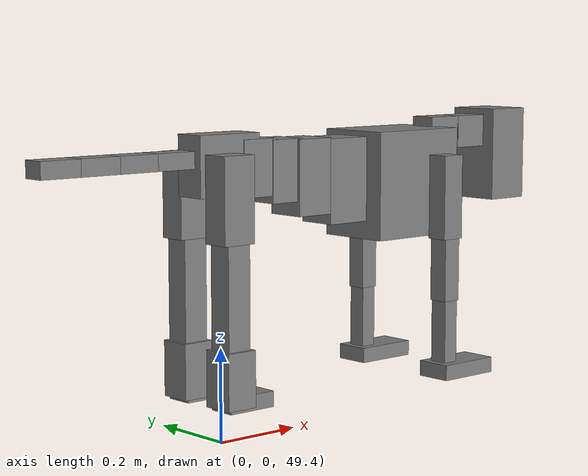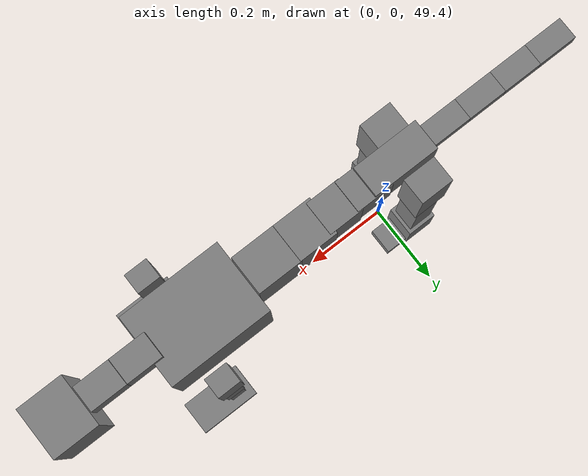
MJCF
<mujoco model="dog">

    <default>
        <joint armature="0.02" stiffness="1" damping="0.2" limited="true"/>
        <geom condim="3" friction="1 0.05 0.05" margin="0.01"/>
        <motor ctrllimited="true" ctrlrange="-1.0 1.0" forcelimited="true" gear="50"/>
    </default>

    <compiler inertiafromgeom="true" angle="radian"/>

    <option timestep="0.016" iterations="50" tolerance="1e-10" solver="Newton" jacobian="dense" cone="pyramidal"/>

    <size nconmax="20000" njmax="60000" nstack="5000000"/>
    <visual>
        <map force="0.1" zfar="30"/>
        <rgba haze="0.15 0.25 0.35 1"/>
        <quality shadowsize="2048"/>
        <global offwidth="800" offheight="800"/>
    </visual>

    <asset>
        <texture type="skybox" builtin="gradient" rgb1="0.3 0.5 0.7" rgb2="0 0 0" width="512" height="512"/>
        <texture name="texplane" type="2d" builtin="checker" rgb1=".2 .3 .4" rgb2=".1 0.15 0.2" width="512" height="512"
                 mark="cross" markrgb=".8 .8 .8"/>
        <texture name="texgeom" type="cube" builtin="flat" mark="cross" width="127" height="1278" rgb1="0.8 0.6 0.4"
                 rgb2="0.8 0.6 0.4" markrgb="1 1 1" random="0.01"/>

        <material name="matplane" reflectance="0.3" texture="texplane" texrepeat="1 1" texuniform="true"/>
        <material name="matgeom" texture="texgeom" texuniform="true" rgba="0.8 0.6 .4 1"/>
    </asset>

    <worldbody>
        <geom name="floor" pos="0 0 0" size="0 0 .25" type="plane" material="matplane" condim="3"/>

        <light directional="false" diffuse=".2 .2 .2" specular="0 0 0" pos="0 0 5" dir="0 0 -1" castshadow="false"/>
        <light mode="targetbodycom" target="torso" directional="false" diffuse=".8 .8 .8" specular="0.3 0.3 0.3"
               pos="0 0 4.0" dir="0 0 -1"/>

        <body name="root" pos="0 0 50">
            <freejoint name="root_1"/>
            <geom type="box" pos="0 0 -0.02" size="0.0774  0.0358  0.063" density="2030"/>

            <body name="spine1" pos="0.054 0 0">
                <joint name="spine1_y" axis="0 1 0" range="0 0.7" limited="true"/>
                <geom type="box" pos="0.02375 0 -0.03" size="0.04375  0.0375  0.05985" density="2030"/>

                <body name="spine2" pos="0.0612 0 0">
                    <joint name="spine2_y" axis="0 1 0" range="-0.15 0.15" limited="true"/>
                    <geom type="box" pos="0.03555  0  -0.04" size="0.04055  0.039  0.06615" density="2030"/>

                    <body name="spine3" pos="0.0730 0 0">
                        <joint name="spine3_y" axis="0 1 0" range="-0.15 0.15" limited="true"/>
                        <geom type="box" pos="0.03555  0  -0.057" size="0.04555  0.0445  0.081" density="2030"/>

                        <body name="spine4" pos="0.0780 0 0">
                            <joint name="spine4_y" axis="0 1 0" range="-0.15 0.15" limited="true"/>
                            <geom type="box" pos="0.05265  0  -0.07" size="0.05265  0.045  0.09135" density="2030"/>

                            <body name="torso" pos="0.1082 0 0">
                                <joint name="torso_y" axis="0 1 0" range="-0.15 0.15" limited="true"/>
                                <geom type="box" pos="0.11925  0  -0.085" size="0.11925  0.085  0.11745"
                                      density="2030"/>

                                <body name="neck1" pos="0.2160  0   0.0180">
                                    <joint name="neck1_y" axis="0 1 0" range="-1.2  -1" limited="true"/>
                                    <geom type="box" pos="0.0423  0  0" size="0.0423  0.03  0.036" density="2325"/>

                                    <body name="neck2" pos="0.0853  0  0">
                                        <joint name="neck2_y" axis="0 1 0" range="0.1  0" limited="true"/>
                                        <geom type="box" pos="0.0423  0  0" size="0.0423  0.03  0.036" density="2325"/>

                                        <body name="head" pos="0.0853  0  0">
                                            <joint name="head_y" axis="0 1 0" range="-0.3  -0.2" limited="true"/>
                                            <geom type="box" pos="0.0531  0  -0.055" size="0.0531  0.06  0.1044"
                                                  density="4030"/>

                                        </body>
                                    </body>
                                </body>

                                <body name="front_shoulder" pos="0.156  0   -0.0480">
                                    <joint name="front_shoulder_y" axis="0 1 0" range="-1 1.5" limited="true"/>
                                    <geom type="box" pos="0 0.13 -0.0651" size="0.0273  0.0233  0.0917" density="1158"/>
                                    <geom type="box" pos="0 -0.13 -0.0651" size="0.0273  0.0233  0.0917"
                                          density="1158"/>

                                    <body name="front_elbow" pos="0  0  -0.1302">
                                        <joint name="front_elbow_y" axis="0 1 0" range="-2 0" limited="true"/>
                                        <geom type="box" pos="0 0.13 -0.0819" size="0.0213  0.0217  0.0819"
                                              density="1081"/>
                                        <geom type="box" pos="0 -0.13 -0.0819" size="0.0213  0.0217  0.0819"
                                              density="1081"/>

                                        <body name="front_wrist" pos="0  0  -0.1639">
                                            <joint name="front_wrist_y" axis="0 1 0" range="-0.2 0" limited="true"/>
                                            <geom type="box" pos="0 0.13 -0.0763" size="0.0181  0.0201  0.0895"
                                                  density="1664"/>
                                            <geom type="box" pos="0 -0.13 -0.0763" size="0.0181  0.0201  0.0895"
                                                  density="1664"/>

                                            <body name="front_finger_end" pos="0  0  -0.1526">
                                                <joint name="front_finger_y" axis="0 1 0" range="-0.4 1"
                                                       limited="true"/>
                                                <geom type="box" pos="0.0400  0.13  -0.0020"
                                                      size="0.0733  0.0400  0.0170" density="1515"/>
                                                <geom type="box" pos="0.0400  -0.13  -0.0020"
                                                      size="0.0733  0.0400  0.0170" density="1515"/>

                                            </body>

                                        </body>
                                    </body>
                                </body>

                            </body>
                        </body>
                    </body>
                </body>
            </body>

            <body name="back_hip" pos="-0.03 0 -0.018">
                <joint name="back_hip_y" axis="0 1 0" range="-1.5 0.3" limited="true"/>
                <geom type="box" pos="0 0.07 -0.0665" size="0.0384  0.0301  0.0893" density="1154"/>
                <geom type="box" pos="0 -0.07 -0.0665" size="0.0384  0.0301  0.0893" density="1154"/>

                <body name="back_knee" pos="0  0  -0.1330">
                    <joint name="back_knee_y" axis="0 1 0" range="0 2.8" limited="true"/>
                    <geom type="box" pos="0 0.07 -0.1244" size="0.0277  0.0273  0.1400" density="1227"/>
                    <geom type="box" pos="0 -0.07 -0.1244" size="0.0277  0.0273  0.1400" density="1227"/>

                    <body name="back_ankle" pos="0  0  -0.2489">
                        <joint name="back_ankle_y" axis="0 1 0" range="-2.2 0" limited="true"/>
                        <geom type="box" pos="0 0.07 -0.0479" size="0.0353  0.0353  0.0592" density="1284"/>
                        <geom type="box" pos="0 -0.07 -0.0479" size="0.0353  0.0353  0.0592" density="1284"/>

                        <body name="back_toe_end" pos="0  0  -0.0959">
                            <joint name="back_toe_y" axis="0 1 0" range="-0.4 1" limited="true"/>
                            <geom type="box" pos="0.0305  0.07  -0.0016" size="0.0560  0.0305  0.0166" density="1515"/>
                            <geom type="box" pos="0.0305  -0.07  -0.0016" size="0.0560  0.0305  0.0166" density="1515"/>

                        </body>
                    </body>
                </body>
            </body>

            <body name="tail1" pos="-0.074 0 -0.006">
                <joint name="tail1_y" axis="0 1 0" range="-0.2 0.2" limited="true"/>
                <geom type="box" pos="-0.0536  0  0" size="0.045  0.025  0.0175" density="1587"/>

                <body name="tail2" pos="-0.09 0 0">
                    <joint name="tail2_y" axis="0 1 0" range="-0.2 0.2" limited="true"/>
                    <geom type="box" pos="-0.0536  0  0" size="0.045  0.025  0.0175" density="1587"/>

                    <body name="tail3" pos="-0.09 0 0">
                        <joint name="tail3_y" axis="0 1 0" range="-0.2 0.2" limited="true"/>
                        <geom type="box" pos="-0.0536  0  0" size="0.045  0.025  0.0175" density="1587"/>

                        <body name="tail4" pos="-0.09 0 0">
                            <joint name="tail4_y" axis="0 1 0" range="-0.2 0.2" limited="true"/>
                            <geom type="box" pos="-0.0536  0  0" size="0.045  0.025  0.0175" density="1587"/>

                        </body>
                    </body>
                </body>
            </body>
        </body>
    </worldbody>

    <actuator>
        <motor joint="spine1_y" forcerange="-150 150     "/>
        <motor joint="spine2_y" forcerange="-150 150     "/>
        <motor joint="spine3_y" forcerange="-150 150     "/>
        <motor joint="spine4_y" forcerange="-150 150     "/>
        <motor joint="torso_y" forcerange="-150 150     "/>
        <motor joint="neck1_y" forcerange="-100 100       "/>
        <motor joint="neck2_y" forcerange="-100 100       "/>
        <motor joint="head_y" forcerange="-150 150       "/>
        <motor joint="front_shoulder_y" forcerange="-149.55 106.06"/>
        <motor joint="front_elbow_y" forcerange="-114.54 143.61"/>
        <motor joint="front_wrist_y" forcerange="-53.32 107.26"/>
        <motor joint="front_finger_y" forcerange="-77.90 95.25"/>
        <motor joint="back_hip_y" forcerange="-307.74 293.98"/>
        <motor joint="back_knee_y" forcerange="-294.07 303.24"/>
        <motor joint="back_angle_y" forcerange="-233.27 231.97"/>
        <motor joint="back_toe_y" forcerange="-107.00 57.34"/>
        <motor joint="tail1_y" forcerange="-50 50     "/>
        <motor joint="tail2_y" forcerange="-50 50     "/>
        <motor joint="tail3_y" forcerange="-50 50     "/>
        <motor joint="tail4_y" forcerange="-50 50     "/>
    </actuator>
</mujoco>
